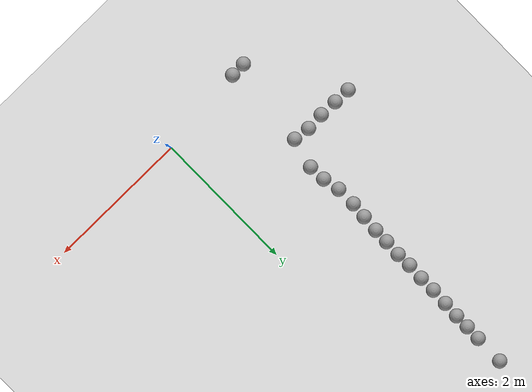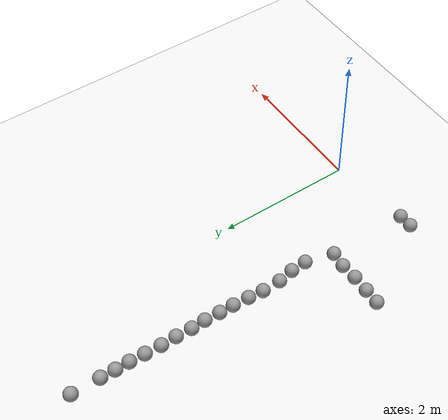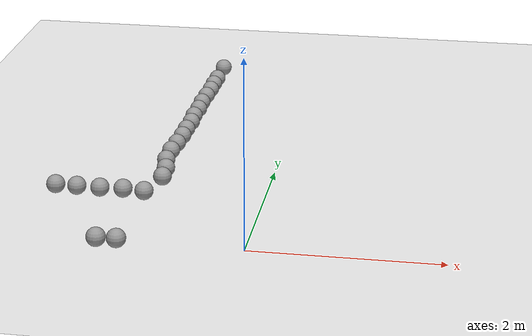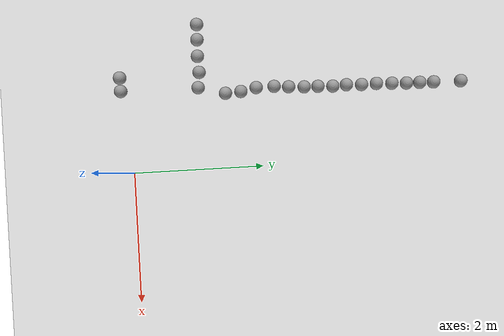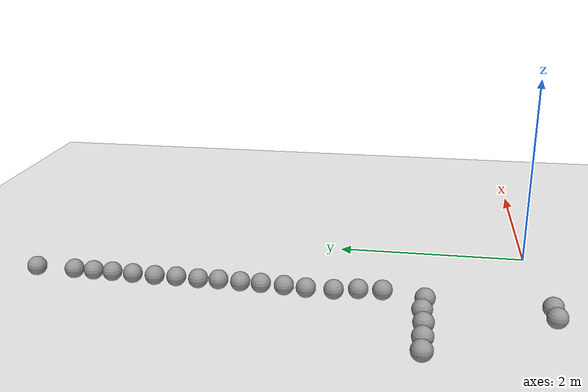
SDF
<sdf version="1.7">
 <world name="default">
  <model name="ground_plane">
   <static>1</static>
   <link name="link">
    <collision name="collision">
     <geometry><plane><normal>0 0 1</normal><size>100 100</size></plane></geometry>
     <surface>
      <contact><collide_bitmask>65535</collide_bitmask></contact>
      <friction><ode><mu>100</mu><mu2>50</mu2></ode></friction>
     </surface>
    </collision>
    <visual name="visual">
     <cast_shadows>0</cast_shadows>
     <geometry><plane><normal>0 0 1</normal><size>100 100</size></plane></geometry>
     <material>
      <script><uri>file://media/materials/scripts/gazebo.material</uri><name>Gazebo/White</name></script>
     </material>
    </visual>
   </link>
  </model>
  <model name="sphere_20">
   <link name="link_0">
    <inertial>
     <mass>1</mass>
     <inertia><ixx>0.1</ixx><ixy>0</ixy><ixz>0</ixz><iyy>0.1</iyy><iyz>0</iyz><izz>0.1</izz></inertia>
    </inertial>
    <visual name="visual">
     <geometry><sphere><radius>0.1</radius></sphere></geometry>
     <material>
      <lighting>1</lighting>
      <script><uri>file://media/materials/scripts/gazebo.material</uri><name>Gazebo/Grey</name></script>
      <shader type="pixel"><normal_map>__default__</normal_map></shader>
      <ambient>0.3 0.3 0.3 1</ambient>
      <diffuse>0.7 0.7 0.7 1</diffuse>
      <specular>0.01 0.01 0.01 1</specular>
      <emissive>0 0 0 1</emissive>
     </material>
    </visual>
    <collision name="collision">
     <geometry><sphere><radius>0.1</radius></sphere></geometry>
     <surface>
      <friction>
       <ode><mu>1</mu><mu2>1</mu2><fdir1>0 0 0</fdir1><slip1>0</slip1><slip2>0</slip2></ode>
       <torsional>
        <coefficient>1</coefficient>
        <patch_radius>0</patch_radius>
        <surface_radius>0</surface_radius>
        <use_patch_radius>1</use_patch_radius>
        <ode><slip>0</slip></ode>
       </torsional>
      </friction>
      <bounce><restitution_coefficient>0</restitution_coefficient><threshold>1e+06</threshold></bounce>
      <contact>
       <collide_without_contact>0</collide_without_contact>
       <collide_without_contact_bitmask>1</collide_without_contact_bitmask>
       <collide_bitmask>1</collide_bitmask>
       <ode>
        <soft_cfm>0</soft_cfm>
        <soft_erp>0.2</soft_erp>
        <kp>1e+13</kp>
        <kd>1</kd>
        <max_vel>0.01</max_vel>
        <min_depth>0</min_depth>
       </ode>
       <bullet>
        <split_impulse>1</split_impulse>
        <split_impulse_penetration_threshold>-0.01</split_impulse_penetration_threshold>
        <soft_cfm>0</soft_cfm>
        <soft_erp>0.2</soft_erp>
        <kp>1e+13</kp>
        <kd>1</kd>
       </bullet>
      </contact>
     </surface>
    </collision>
   </link>
   <static>0</static>
   <pose>-1.13523 5.09634 0.1 0.008725 -0.000692 1e-06</pose>
  </model>
  <model name="sphere_22">
   <link name="link_0">
    <inertial>
     <mass>1</mass>
     <inertia><ixx>0.1</ixx><ixy>0</ixy><ixz>0</ixz><iyy>0.1</iyy><iyz>0</iyz><izz>0.1</izz></inertia>
    </inertial>
    <visual name="visual">
     <geometry><sphere><radius>0.1</radius></sphere></geometry>
     <material>
      <lighting>1</lighting>
      <script><uri>file://media/materials/scripts/gazebo.material</uri><name>Gazebo/Grey</name></script>
      <shader type="pixel"><normal_map>__default__</normal_map></shader>
      <ambient>0.3 0.3 0.3 1</ambient>
      <diffuse>0.7 0.7 0.7 1</diffuse>
      <specular>0.01 0.01 0.01 1</specular>
      <emissive>0 0 0 1</emissive>
     </material>
    </visual>
    <collision name="collision">
     <geometry><sphere><radius>0.1</radius></sphere></geometry>
     <surface>
      <friction>
       <ode><mu>1</mu><mu2>1</mu2><fdir1>0 0 0</fdir1><slip1>0</slip1><slip2>0</slip2></ode>
       <torsional>
        <coefficient>1</coefficient>
        <patch_radius>0</patch_radius>
        <surface_radius>0</surface_radius>
        <use_patch_radius>1</use_patch_radius>
        <ode><slip>0</slip></ode>
       </torsional>
      </friction>
      <bounce><restitution_coefficient>0</restitution_coefficient><threshold>1e+06</threshold></bounce>
      <contact>
       <collide_without_contact>0</collide_without_contact>
       <collide_without_contact_bitmask>1</collide_without_contact_bitmask>
       <collide_bitmask>1</collide_bitmask>
       <ode>
        <soft_cfm>0</soft_cfm>
        <soft_erp>0.2</soft_erp>
        <kp>1e+13</kp>
        <kd>1</kd>
        <max_vel>0.01</max_vel>
        <min_depth>0</min_depth>
       </ode>
       <bullet>
        <split_impulse>1</split_impulse>
        <split_impulse_penetration_threshold>-0.01</split_impulse_penetration_threshold>
        <soft_cfm>0</soft_cfm>
        <soft_erp>0.2</soft_erp>
        <kp>1e+13</kp>
        <kd>1</kd>
       </bullet>
      </contact>
     </surface>
    </collision>
   </link>
   <static>0</static>
   <pose>-1.1404 4.68069 0.1 0.008813 -0.000441 3e-06</pose>
  </model>
  <model name="sphere_23">
   <link name="link_0">
    <inertial>
     <mass>1</mass>
     <inertia><ixx>0.1</ixx><ixy>0</ixy><ixz>0</ixz><iyy>0.1</iyy><iyz>0</iyz><izz>0.1</izz></inertia>
    </inertial>
    <visual name="visual">
     <geometry><sphere><radius>0.1</radius></sphere></geometry>
     <material>
      <lighting>1</lighting>
      <script><uri>file://media/materials/scripts/gazebo.material</uri><name>Gazebo/Grey</name></script>
      <shader type="pixel"><normal_map>__default__</normal_map></shader>
      <ambient>0.3 0.3 0.3 1</ambient>
      <diffuse>0.7 0.7 0.7 1</diffuse>
      <specular>0.01 0.01 0.01 1</specular>
      <emissive>0 0 0 1</emissive>
     </material>
    </visual>
    <collision name="collision">
     <geometry><sphere><radius>0.1</radius></sphere></geometry>
     <surface>
      <friction>
       <ode><mu>1</mu><mu2>1</mu2><fdir1>0 0 0</fdir1><slip1>0</slip1><slip2>0</slip2></ode>
       <torsional>
        <coefficient>1</coefficient>
        <patch_radius>0</patch_radius>
        <surface_radius>0</surface_radius>
        <use_patch_radius>1</use_patch_radius>
        <ode><slip>0</slip></ode>
       </torsional>
      </friction>
      <bounce><restitution_coefficient>0</restitution_coefficient><threshold>1e+06</threshold></bounce>
      <contact>
       <collide_without_contact>0</collide_without_contact>
       <collide_without_contact_bitmask>1</collide_without_contact_bitmask>
       <collide_bitmask>1</collide_bitmask>
       <ode>
        <soft_cfm>0</soft_cfm>
        <soft_erp>0.2</soft_erp>
        <kp>1e+13</kp>
        <kd>1</kd>
        <max_vel>0.01</max_vel>
        <min_depth>0</min_depth>
       </ode>
       <bullet>
        <split_impulse>1</split_impulse>
        <split_impulse_penetration_threshold>-0.01</split_impulse_penetration_threshold>
        <soft_cfm>0</soft_cfm>
        <soft_erp>0.2</soft_erp>
        <kp>1e+13</kp>
        <kd>1</kd>
       </bullet>
      </contact>
     </surface>
    </collision>
   </link>
   <static>0</static>
   <pose>-1.14558 4.46811 0.1 0 -0 0</pose>
  </model>
  <model name="sphere_24">
   <link name="link_0">
    <inertial>
     <mass>1</mass>
     <inertia><ixx>0.1</ixx><ixy>0</ixy><ixz>0</ixz><iyy>0.1</iyy><iyz>0</iyz><izz>0.1</izz></inertia>
    </inertial>
    <visual name="visual">
     <geometry><sphere><radius>0.1</radius></sphere></geometry>
     <material>
      <lighting>1</lighting>
      <script><uri>file://media/materials/scripts/gazebo.material</uri><name>Gazebo/Grey</name></script>
      <shader type="pixel"><normal_map>__default__</normal_map></shader>
      <ambient>0.3 0.3 0.3 1</ambient>
      <diffuse>0.7 0.7 0.7 1</diffuse>
      <specular>0.01 0.01 0.01 1</specular>
      <emissive>0 0 0 1</emissive>
     </material>
    </visual>
    <collision name="collision">
     <geometry><sphere><radius>0.1</radius></sphere></geometry>
     <surface>
      <friction>
       <ode><mu>1</mu><mu2>1</mu2><fdir1>0 0 0</fdir1><slip1>0</slip1><slip2>0</slip2></ode>
       <torsional>
        <coefficient>1</coefficient>
        <patch_radius>0</patch_radius>
        <surface_radius>0</surface_radius>
        <use_patch_radius>1</use_patch_radius>
        <ode><slip>0</slip></ode>
       </torsional>
      </friction>
      <bounce><restitution_coefficient>0</restitution_coefficient><threshold>1e+06</threshold></bounce>
      <contact>
       <collide_without_contact>0</collide_without_contact>
       <collide_without_contact_bitmask>1</collide_without_contact_bitmask>
       <collide_bitmask>1</collide_bitmask>
       <ode>
        <soft_cfm>0</soft_cfm>
        <soft_erp>0.2</soft_erp>
        <kp>1e+13</kp>
        <kd>1</kd>
        <max_vel>0.01</max_vel>
        <min_depth>0</min_depth>
       </ode>
       <bullet>
        <split_impulse>1</split_impulse>
        <split_impulse_penetration_threshold>-0.01</split_impulse_penetration_threshold>
        <soft_cfm>0</soft_cfm>
        <soft_erp>0.2</soft_erp>
        <kp>1e+13</kp>
        <kd>1</kd>
       </bullet>
      </contact>
     </surface>
    </collision>
   </link>
   <static>0</static>
   <pose>-1.14606 4.26398 0.1 0 -0 0</pose>
  </model>
  <model name="sphere_25">
   <link name="link_0">
    <inertial>
     <mass>1</mass>
     <inertia><ixx>0.1</ixx><ixy>0</ixy><ixz>0</ixz><iyy>0.1</iyy><iyz>0</iyz><izz>0.1</izz></inertia>
    </inertial>
    <visual name="visual">
     <geometry><sphere><radius>0.1</radius></sphere></geometry>
     <material>
      <lighting>1</lighting>
      <script><uri>file://media/materials/scripts/gazebo.material</uri><name>Gazebo/Grey</name></script>
      <shader type="pixel"><normal_map>__default__</normal_map></shader>
      <ambient>0.3 0.3 0.3 1</ambient>
      <diffuse>0.7 0.7 0.7 1</diffuse>
      <specular>0.01 0.01 0.01 1</specular>
      <emissive>0 0 0 1</emissive>
     </material>
    </visual>
    <collision name="collision">
     <geometry><sphere><radius>0.1</radius></sphere></geometry>
     <surface>
      <friction>
       <ode><mu>1</mu><mu2>1</mu2><fdir1>0 0 0</fdir1><slip1>0</slip1><slip2>0</slip2></ode>
       <torsional>
        <coefficient>1</coefficient>
        <patch_radius>0</patch_radius>
        <surface_radius>0</surface_radius>
        <use_patch_radius>1</use_patch_radius>
        <ode><slip>0</slip></ode>
       </torsional>
      </friction>
      <bounce><restitution_coefficient>0</restitution_coefficient><threshold>1e+06</threshold></bounce>
      <contact>
       <collide_without_contact>0</collide_without_contact>
       <collide_without_contact_bitmask>1</collide_without_contact_bitmask>
       <collide_bitmask>1</collide_bitmask>
       <ode>
        <soft_cfm>0</soft_cfm>
        <soft_erp>0.2</soft_erp>
        <kp>1e+13</kp>
        <kd>1</kd>
        <max_vel>0.01</max_vel>
        <min_depth>0</min_depth>
       </ode>
       <bullet>
        <split_impulse>1</split_impulse>
        <split_impulse_penetration_threshold>-0.01</split_impulse_penetration_threshold>
        <soft_cfm>0</soft_cfm>
        <soft_erp>0.2</soft_erp>
        <kp>1e+13</kp>
        <kd>1</kd>
       </bullet>
      </contact>
     </surface>
    </collision>
   </link>
   <static>0</static>
   <pose>-1.15608 4.04089 0.1 0 -0 0</pose>
  </model>
  <model name="sphere_26">
   <link name="link_0">
    <inertial>
     <mass>1</mass>
     <inertia><ixx>0.1</ixx><ixy>0</ixy><ixz>0</ixz><iyy>0.1</iyy><iyz>0</iyz><izz>0.1</izz></inertia>
    </inertial>
    <visual name="visual">
     <geometry><sphere><radius>0.1</radius></sphere></geometry>
     <material>
      <lighting>1</lighting>
      <script><uri>file://media/materials/scripts/gazebo.material</uri><name>Gazebo/Grey</name></script>
      <shader type="pixel"><normal_map>__default__</normal_map></shader>
      <ambient>0.3 0.3 0.3 1</ambient>
      <diffuse>0.7 0.7 0.7 1</diffuse>
      <specular>0.01 0.01 0.01 1</specular>
      <emissive>0 0 0 1</emissive>
     </material>
    </visual>
    <collision name="collision">
     <geometry><sphere><radius>0.1</radius></sphere></geometry>
     <surface>
      <friction>
       <ode><mu>1</mu><mu2>1</mu2><fdir1>0 0 0</fdir1><slip1>0</slip1><slip2>0</slip2></ode>
       <torsional>
        <coefficient>1</coefficient>
        <patch_radius>0</patch_radius>
        <surface_radius>0</surface_radius>
        <use_patch_radius>1</use_patch_radius>
        <ode><slip>0</slip></ode>
       </torsional>
      </friction>
      <bounce><restitution_coefficient>0</restitution_coefficient><threshold>1e+06</threshold></bounce>
      <contact>
       <collide_without_contact>0</collide_without_contact>
       <collide_without_contact_bitmask>1</collide_without_contact_bitmask>
       <collide_bitmask>1</collide_bitmask>
       <ode>
        <soft_cfm>0</soft_cfm>
        <soft_erp>0.2</soft_erp>
        <kp>1e+13</kp>
        <kd>1</kd>
        <max_vel>0.01</max_vel>
        <min_depth>0</min_depth>
       </ode>
       <bullet>
        <split_impulse>1</split_impulse>
        <split_impulse_penetration_threshold>-0.01</split_impulse_penetration_threshold>
        <soft_cfm>0</soft_cfm>
        <soft_erp>0.2</soft_erp>
        <kp>1e+13</kp>
        <kd>1</kd>
       </bullet>
      </contact>
     </surface>
    </collision>
   </link>
   <static>0</static>
   <pose>-1.16613 3.80358 0.1 0 -0 0</pose>
  </model>
  <model name="sphere_27">
   <link name="link_0">
    <inertial>
     <mass>1</mass>
     <inertia><ixx>0.1</ixx><ixy>0</ixy><ixz>0</ixz><iyy>0.1</iyy><iyz>0</iyz><izz>0.1</izz></inertia>
    </inertial>
    <visual name="visual">
     <geometry><sphere><radius>0.1</radius></sphere></geometry>
     <material>
      <lighting>1</lighting>
      <script><uri>file://media/materials/scripts/gazebo.material</uri><name>Gazebo/Grey</name></script>
      <shader type="pixel"><normal_map>__default__</normal_map></shader>
      <ambient>0.3 0.3 0.3 1</ambient>
      <diffuse>0.7 0.7 0.7 1</diffuse>
      <specular>0.01 0.01 0.01 1</specular>
      <emissive>0 0 0 1</emissive>
     </material>
    </visual>
    <collision name="collision">
     <geometry><sphere><radius>0.1</radius></sphere></geometry>
     <surface>
      <friction>
       <ode><mu>1</mu><mu2>1</mu2><fdir1>0 0 0</fdir1><slip1>0</slip1><slip2>0</slip2></ode>
       <torsional>
        <coefficient>1</coefficient>
        <patch_radius>0</patch_radius>
        <surface_radius>0</surface_radius>
        <use_patch_radius>1</use_patch_radius>
        <ode><slip>0</slip></ode>
       </torsional>
      </friction>
      <bounce><restitution_coefficient>0</restitution_coefficient><threshold>1e+06</threshold></bounce>
      <contact>
       <collide_without_contact>0</collide_without_contact>
       <collide_without_contact_bitmask>1</collide_without_contact_bitmask>
       <collide_bitmask>1</collide_bitmask>
       <ode>
        <soft_cfm>0</soft_cfm>
        <soft_erp>0.2</soft_erp>
        <kp>1e+13</kp>
        <kd>1</kd>
        <max_vel>0.01</max_vel>
        <min_depth>0</min_depth>
       </ode>
       <bullet>
        <split_impulse>1</split_impulse>
        <split_impulse_penetration_threshold>-0.01</split_impulse_penetration_threshold>
        <soft_cfm>0</soft_cfm>
        <soft_erp>0.2</soft_erp>
        <kp>1e+13</kp>
        <kd>1</kd>
       </bullet>
      </contact>
     </surface>
    </collision>
   </link>
   <static>0</static>
   <pose>-1.16192 3.57573 0.1 0 -0 0</pose>
  </model>
  <model name="sphere_28">
   <link name="link_0">
    <inertial>
     <mass>1</mass>
     <inertia><ixx>0.1</ixx><ixy>0</ixy><ixz>0</ixz><iyy>0.1</iyy><iyz>0</iyz><izz>0.1</izz></inertia>
    </inertial>
    <visual name="visual">
     <geometry><sphere><radius>0.1</radius></sphere></geometry>
     <material>
      <lighting>1</lighting>
      <script><uri>file://media/materials/scripts/gazebo.material</uri><name>Gazebo/Grey</name></script>
      <shader type="pixel"><normal_map>__default__</normal_map></shader>
      <ambient>0.3 0.3 0.3 1</ambient>
      <diffuse>0.7 0.7 0.7 1</diffuse>
      <specular>0.01 0.01 0.01 1</specular>
      <emissive>0 0 0 1</emissive>
     </material>
    </visual>
    <collision name="collision">
     <geometry><sphere><radius>0.1</radius></sphere></geometry>
     <surface>
      <friction>
       <ode><mu>1</mu><mu2>1</mu2><fdir1>0 0 0</fdir1><slip1>0</slip1><slip2>0</slip2></ode>
       <torsional>
        <coefficient>1</coefficient>
        <patch_radius>0</patch_radius>
        <surface_radius>0</surface_radius>
        <use_patch_radius>1</use_patch_radius>
        <ode><slip>0</slip></ode>
       </torsional>
      </friction>
      <bounce><restitution_coefficient>0</restitution_coefficient><threshold>1e+06</threshold></bounce>
      <contact>
       <collide_without_contact>0</collide_without_contact>
       <collide_without_contact_bitmask>1</collide_without_contact_bitmask>
       <collide_bitmask>1</collide_bitmask>
       <ode>
        <soft_cfm>0</soft_cfm>
        <soft_erp>0.2</soft_erp>
        <kp>1e+13</kp>
        <kd>1</kd>
        <max_vel>0.01</max_vel>
        <min_depth>0</min_depth>
       </ode>
       <bullet>
        <split_impulse>1</split_impulse>
        <split_impulse_penetration_threshold>-0.01</split_impulse_penetration_threshold>
        <soft_cfm>0</soft_cfm>
        <soft_erp>0.2</soft_erp>
        <kp>1e+13</kp>
        <kd>1</kd>
       </bullet>
      </contact>
     </surface>
    </collision>
   </link>
   <static>0</static>
   <pose>-1.17196 3.34319 0.1 0 -0 0</pose>
  </model>
  <model name="sphere_29">
   <link name="link_0">
    <inertial>
     <mass>1</mass>
     <inertia><ixx>0.1</ixx><ixy>0</ixy><ixz>0</ixz><iyy>0.1</iyy><iyz>0</iyz><izz>0.1</izz></inertia>
    </inertial>
    <visual name="visual">
     <geometry><sphere><radius>0.1</radius></sphere></geometry>
     <material>
      <lighting>1</lighting>
      <script><uri>file://media/materials/scripts/gazebo.material</uri><name>Gazebo/Grey</name></script>
      <shader type="pixel"><normal_map>__default__</normal_map></shader>
      <ambient>0.3 0.3 0.3 1</ambient>
      <diffuse>0.7 0.7 0.7 1</diffuse>
      <specular>0.01 0.01 0.01 1</specular>
      <emissive>0 0 0 1</emissive>
     </material>
    </visual>
    <collision name="collision">
     <geometry><sphere><radius>0.1</radius></sphere></geometry>
     <surface>
      <friction>
       <ode><mu>1</mu><mu2>1</mu2><fdir1>0 0 0</fdir1><slip1>0</slip1><slip2>0</slip2></ode>
       <torsional>
        <coefficient>1</coefficient>
        <patch_radius>0</patch_radius>
        <surface_radius>0</surface_radius>
        <use_patch_radius>1</use_patch_radius>
        <ode><slip>0</slip></ode>
       </torsional>
      </friction>
      <bounce><restitution_coefficient>0</restitution_coefficient><threshold>1e+06</threshold></bounce>
      <contact>
       <collide_without_contact>0</collide_without_contact>
       <collide_without_contact_bitmask>1</collide_without_contact_bitmask>
       <collide_bitmask>1</collide_bitmask>
       <ode>
        <soft_cfm>0</soft_cfm>
        <soft_erp>0.2</soft_erp>
        <kp>1e+13</kp>
        <kd>1</kd>
        <max_vel>0.01</max_vel>
        <min_depth>0</min_depth>
       </ode>
       <bullet>
        <split_impulse>1</split_impulse>
        <split_impulse_penetration_threshold>-0.01</split_impulse_penetration_threshold>
        <soft_cfm>0</soft_cfm>
        <soft_erp>0.2</soft_erp>
        <kp>1e+13</kp>
        <kd>1</kd>
       </bullet>
      </contact>
     </surface>
    </collision>
   </link>
   <static>0</static>
   <pose>-1.16297 3.13435 0.1 0 -0 0</pose>
  </model>
  <model name="sphere_30">
   <link name="link_0">
    <inertial>
     <mass>1</mass>
     <inertia><ixx>0.1</ixx><ixy>0</ixy><ixz>0</ixz><iyy>0.1</iyy><iyz>0</iyz><izz>0.1</izz></inertia>
    </inertial>
    <visual name="visual">
     <geometry><sphere><radius>0.1</radius></sphere></geometry>
     <material>
      <lighting>1</lighting>
      <script><uri>file://media/materials/scripts/gazebo.material</uri><name>Gazebo/Grey</name></script>
      <shader type="pixel"><normal_map>__default__</normal_map></shader>
      <ambient>0.3 0.3 0.3 1</ambient>
      <diffuse>0.7 0.7 0.7 1</diffuse>
      <specular>0.01 0.01 0.01 1</specular>
      <emissive>0 0 0 1</emissive>
     </material>
    </visual>
    <collision name="collision">
     <geometry><sphere><radius>0.1</radius></sphere></geometry>
     <surface>
      <friction>
       <ode><mu>1</mu><mu2>1</mu2><fdir1>0 0 0</fdir1><slip1>0</slip1><slip2>0</slip2></ode>
       <torsional>
        <coefficient>1</coefficient>
        <patch_radius>0</patch_radius>
        <surface_radius>0</surface_radius>
        <use_patch_radius>1</use_patch_radius>
        <ode><slip>0</slip></ode>
       </torsional>
      </friction>
      <bounce><restitution_coefficient>0</restitution_coefficient><threshold>1e+06</threshold></bounce>
      <contact>
       <collide_without_contact>0</collide_without_contact>
       <collide_without_contact_bitmask>1</collide_without_contact_bitmask>
       <collide_bitmask>1</collide_bitmask>
       <ode>
        <soft_cfm>0</soft_cfm>
        <soft_erp>0.2</soft_erp>
        <kp>1e+13</kp>
        <kd>1</kd>
        <max_vel>0.01</max_vel>
        <min_depth>0</min_depth>
       </ode>
       <bullet>
        <split_impulse>1</split_impulse>
        <split_impulse_penetration_threshold>-0.01</split_impulse_penetration_threshold>
        <soft_cfm>0</soft_cfm>
        <soft_erp>0.2</soft_erp>
        <kp>1e+13</kp>
        <kd>1</kd>
       </bullet>
      </contact>
     </surface>
    </collision>
   </link>
   <static>0</static>
   <pose>-1.17298 2.90659 0.1 0 -0 0</pose>
  </model>
  <model name="sphere_31">
   <link name="link_0">
    <inertial>
     <mass>1</mass>
     <inertia><ixx>0.1</ixx><ixy>0</ixy><ixz>0</ixz><iyy>0.1</iyy><iyz>0</iyz><izz>0.1</izz></inertia>
    </inertial>
    <visual name="visual">
     <geometry><sphere><radius>0.1</radius></sphere></geometry>
     <material>
      <lighting>1</lighting>
      <script><uri>file://media/materials/scripts/gazebo.material</uri><name>Gazebo/Grey</name></script>
      <shader type="pixel"><normal_map>__default__</normal_map></shader>
      <ambient>0.3 0.3 0.3 1</ambient>
      <diffuse>0.7 0.7 0.7 1</diffuse>
      <specular>0.01 0.01 0.01 1</specular>
      <emissive>0 0 0 1</emissive>
     </material>
    </visual>
    <collision name="collision">
     <geometry><sphere><radius>0.1</radius></sphere></geometry>
     <surface>
      <friction>
       <ode><mu>1</mu><mu2>1</mu2><fdir1>0 0 0</fdir1><slip1>0</slip1><slip2>0</slip2></ode>
       <torsional>
        <coefficient>1</coefficient>
        <patch_radius>0</patch_radius>
        <surface_radius>0</surface_radius>
        <use_patch_radius>1</use_patch_radius>
        <ode><slip>0</slip></ode>
       </torsional>
      </friction>
      <bounce><restitution_coefficient>0</restitution_coefficient><threshold>1e+06</threshold></bounce>
      <contact>
       <collide_without_contact>0</collide_without_contact>
       <collide_without_contact_bitmask>1</collide_without_contact_bitmask>
       <collide_bitmask>1</collide_bitmask>
       <ode>
        <soft_cfm>0</soft_cfm>
        <soft_erp>0.2</soft_erp>
        <kp>1e+13</kp>
        <kd>1</kd>
        <max_vel>0.01</max_vel>
        <min_depth>0</min_depth>
       </ode>
       <bullet>
        <split_impulse>1</split_impulse>
        <split_impulse_penetration_threshold>-0.01</split_impulse_penetration_threshold>
        <soft_cfm>0</soft_cfm>
        <soft_erp>0.2</soft_erp>
        <kp>1e+13</kp>
        <kd>1</kd>
       </bullet>
      </contact>
     </surface>
    </collision>
   </link>
   <static>0</static>
   <pose>-1.17631 2.69518 0.1 0 -0 0</pose>
  </model>
  <model name="sphere_32">
   <link name="link_0">
    <inertial>
     <mass>1</mass>
     <inertia><ixx>0.1</ixx><ixy>0</ixy><ixz>0</ixz><iyy>0.1</iyy><iyz>0</iyz><izz>0.1</izz></inertia>
    </inertial>
    <visual name="visual">
     <geometry><sphere><radius>0.1</radius></sphere></geometry>
     <material>
      <lighting>1</lighting>
      <script><uri>file://media/materials/scripts/gazebo.material</uri><name>Gazebo/Grey</name></script>
      <shader type="pixel"><normal_map>__default__</normal_map></shader>
      <ambient>0.3 0.3 0.3 1</ambient>
      <diffuse>0.7 0.7 0.7 1</diffuse>
      <specular>0.01 0.01 0.01 1</specular>
      <emissive>0 0 0 1</emissive>
     </material>
    </visual>
    <collision name="collision">
     <geometry><sphere><radius>0.1</radius></sphere></geometry>
     <surface>
      <friction>
       <ode><mu>1</mu><mu2>1</mu2><fdir1>0 0 0</fdir1><slip1>0</slip1><slip2>0</slip2></ode>
       <torsional>
        <coefficient>1</coefficient>
        <patch_radius>0</patch_radius>
        <surface_radius>0</surface_radius>
        <use_patch_radius>1</use_patch_radius>
        <ode><slip>0</slip></ode>
       </torsional>
      </friction>
      <bounce><restitution_coefficient>0</restitution_coefficient><threshold>1e+06</threshold></bounce>
      <contact>
       <collide_without_contact>0</collide_without_contact>
       <collide_without_contact_bitmask>1</collide_without_contact_bitmask>
       <collide_bitmask>1</collide_bitmask>
       <ode>
        <soft_cfm>0</soft_cfm>
        <soft_erp>0.2</soft_erp>
        <kp>1e+13</kp>
        <kd>1</kd>
        <max_vel>0.01</max_vel>
        <min_depth>0</min_depth>
       </ode>
       <bullet>
        <split_impulse>1</split_impulse>
        <split_impulse_penetration_threshold>-0.01</split_impulse_penetration_threshold>
        <soft_cfm>0</soft_cfm>
        <soft_erp>0.2</soft_erp>
        <kp>1e+13</kp>
        <kd>1</kd>
       </bullet>
      </contact>
     </surface>
    </collision>
   </link>
   <static>0</static>
   <pose>-1.19111 2.45793 0.1 0 -0 0</pose>
  </model>
  <model name="sphere_33">
   <link name="link_0">
    <inertial>
     <mass>1</mass>
     <inertia><ixx>0.1</ixx><ixy>0</ixy><ixz>0</ixz><iyy>0.1</iyy><iyz>0</iyz><izz>0.1</izz></inertia>
    </inertial>
    <visual name="visual">
     <geometry><sphere><radius>0.1</radius></sphere></geometry>
     <material>
      <lighting>1</lighting>
      <script><uri>file://media/materials/scripts/gazebo.material</uri><name>Gazebo/Grey</name></script>
      <shader type="pixel"><normal_map>__default__</normal_map></shader>
      <ambient>0.3 0.3 0.3 1</ambient>
      <diffuse>0.7 0.7 0.7 1</diffuse>
      <specular>0.01 0.01 0.01 1</specular>
      <emissive>0 0 0 1</emissive>
     </material>
    </visual>
    <collision name="collision">
     <geometry><sphere><radius>0.1</radius></sphere></geometry>
     <surface>
      <friction>
       <ode><mu>1</mu><mu2>1</mu2><fdir1>0 0 0</fdir1><slip1>0</slip1><slip2>0</slip2></ode>
       <torsional>
        <coefficient>1</coefficient>
        <patch_radius>0</patch_radius>
        <surface_radius>0</surface_radius>
        <use_patch_radius>1</use_patch_radius>
        <ode><slip>0</slip></ode>
       </torsional>
      </friction>
      <bounce><restitution_coefficient>0</restitution_coefficient><threshold>1e+06</threshold></bounce>
      <contact>
       <collide_without_contact>0</collide_without_contact>
       <collide_without_contact_bitmask>1</collide_without_contact_bitmask>
       <collide_bitmask>1</collide_bitmask>
       <ode>
        <soft_cfm>0</soft_cfm>
        <soft_erp>0.2</soft_erp>
        <kp>1e+13</kp>
        <kd>1</kd>
        <max_vel>0.01</max_vel>
        <min_depth>0</min_depth>
       </ode>
       <bullet>
        <split_impulse>1</split_impulse>
        <split_impulse_penetration_threshold>-0.01</split_impulse_penetration_threshold>
        <soft_cfm>0</soft_cfm>
        <soft_erp>0.2</soft_erp>
        <kp>1e+13</kp>
        <kd>1</kd>
       </bullet>
      </contact>
     </surface>
    </collision>
   </link>
   <static>0</static>
   <pose>-1.21062 2.23494 0.1 0 -0 0</pose>
  </model>
  <model name="sphere_34">
   <link name="link_0">
    <inertial>
     <mass>1</mass>
     <inertia><ixx>0.1</ixx><ixy>0</ixy><ixz>0</ixz><iyy>0.1</iyy><iyz>0</iyz><izz>0.1</izz></inertia>
    </inertial>
    <visual name="visual">
     <geometry><sphere><radius>0.1</radius></sphere></geometry>
     <material>
      <lighting>1</lighting>
      <script><uri>file://media/materials/scripts/gazebo.material</uri><name>Gazebo/Grey</name></script>
      <shader type="pixel"><normal_map>__default__</normal_map></shader>
      <ambient>0.3 0.3 0.3 1</ambient>
      <diffuse>0.7 0.7 0.7 1</diffuse>
      <specular>0.01 0.01 0.01 1</specular>
      <emissive>0 0 0 1</emissive>
     </material>
    </visual>
    <collision name="collision">
     <geometry><sphere><radius>0.1</radius></sphere></geometry>
     <surface>
      <friction>
       <ode><mu>1</mu><mu2>1</mu2><fdir1>0 0 0</fdir1><slip1>0</slip1><slip2>0</slip2></ode>
       <torsional>
        <coefficient>1</coefficient>
        <patch_radius>0</patch_radius>
        <surface_radius>0</surface_radius>
        <use_patch_radius>1</use_patch_radius>
        <ode><slip>0</slip></ode>
       </torsional>
      </friction>
      <bounce><restitution_coefficient>0</restitution_coefficient><threshold>1e+06</threshold></bounce>
      <contact>
       <collide_without_contact>0</collide_without_contact>
       <collide_without_contact_bitmask>1</collide_without_contact_bitmask>
       <collide_bitmask>1</collide_bitmask>
       <ode>
        <soft_cfm>0</soft_cfm>
        <soft_erp>0.2</soft_erp>
        <kp>1e+13</kp>
        <kd>1</kd>
        <max_vel>0.01</max_vel>
        <min_depth>0</min_depth>
       </ode>
       <bullet>
        <split_impulse>1</split_impulse>
        <split_impulse_penetration_threshold>-0.01</split_impulse_penetration_threshold>
        <soft_cfm>0</soft_cfm>
        <soft_erp>0.2</soft_erp>
        <kp>1e+13</kp>
        <kd>1</kd>
       </bullet>
      </contact>
     </surface>
    </collision>
   </link>
   <static>0</static>
   <pose>-1.20653 1.95972 0.1 0 -0 0</pose>
  </model>
  <model name="sphere_35">
   <link name="link_0">
    <inertial>
     <mass>1</mass>
     <inertia><ixx>0.1</ixx><ixy>0</ixy><ixz>0</ixz><iyy>0.1</iyy><iyz>0</iyz><izz>0.1</izz></inertia>
    </inertial>
    <visual name="visual">
     <geometry><sphere><radius>0.1</radius></sphere></geometry>
     <material>
      <lighting>1</lighting>
      <script><uri>file://media/materials/scripts/gazebo.material</uri><name>Gazebo/Grey</name></script>
      <shader type="pixel"><normal_map>__default__</normal_map></shader>
      <ambient>0.3 0.3 0.3 1</ambient>
      <diffuse>0.7 0.7 0.7 1</diffuse>
      <specular>0.01 0.01 0.01 1</specular>
      <emissive>0 0 0 1</emissive>
     </material>
    </visual>
    <collision name="collision">
     <geometry><sphere><radius>0.1</radius></sphere></geometry>
     <surface>
      <friction>
       <ode><mu>1</mu><mu2>1</mu2><fdir1>0 0 0</fdir1><slip1>0</slip1><slip2>0</slip2></ode>
       <torsional>
        <coefficient>1</coefficient>
        <patch_radius>0</patch_radius>
        <surface_radius>0</surface_radius>
        <use_patch_radius>1</use_patch_radius>
        <ode><slip>0</slip></ode>
       </torsional>
      </friction>
      <bounce><restitution_coefficient>0</restitution_coefficient><threshold>1e+06</threshold></bounce>
      <contact>
       <collide_without_contact>0</collide_without_contact>
       <collide_without_contact_bitmask>1</collide_without_contact_bitmask>
       <collide_bitmask>1</collide_bitmask>
       <ode>
        <soft_cfm>0</soft_cfm>
        <soft_erp>0.2</soft_erp>
        <kp>1e+13</kp>
        <kd>1</kd>
        <max_vel>0.01</max_vel>
        <min_depth>0</min_depth>
       </ode>
       <bullet>
        <split_impulse>1</split_impulse>
        <split_impulse_penetration_threshold>-0.01</split_impulse_penetration_threshold>
        <soft_cfm>0</soft_cfm>
        <soft_erp>0.2</soft_erp>
        <kp>1e+13</kp>
        <kd>1</kd>
       </bullet>
      </contact>
     </surface>
    </collision>
   </link>
   <static>0</static>
   <pose>-1.15963 1.72234 0.1 0 -0 0</pose>
  </model>
  <model name="sphere_36">
   <link name="link_0">
    <inertial>
     <mass>1</mass>
     <inertia><ixx>0.1</ixx><ixy>0</ixy><ixz>0</ixz><iyy>0.1</iyy><iyz>0</iyz><izz>0.1</izz></inertia>
    </inertial>
    <visual name="visual">
     <geometry><sphere><radius>0.1</radius></sphere></geometry>
     <material>
      <lighting>1</lighting>
      <script><uri>file://media/materials/scripts/gazebo.material</uri><name>Gazebo/Grey</name></script>
      <shader type="pixel"><normal_map>__default__</normal_map></shader>
      <ambient>0.3 0.3 0.3 1</ambient>
      <diffuse>0.7 0.7 0.7 1</diffuse>
      <specular>0.01 0.01 0.01 1</specular>
      <emissive>0 0 0 1</emissive>
     </material>
    </visual>
    <collision name="collision">
     <geometry><sphere><radius>0.1</radius></sphere></geometry>
     <surface>
      <friction>
       <ode><mu>1</mu><mu2>1</mu2><fdir1>0 0 0</fdir1><slip1>0</slip1><slip2>0</slip2></ode>
       <torsional>
        <coefficient>1</coefficient>
        <patch_radius>0</patch_radius>
        <surface_radius>0</surface_radius>
        <use_patch_radius>1</use_patch_radius>
        <ode><slip>0</slip></ode>
       </torsional>
      </friction>
      <bounce><restitution_coefficient>0</restitution_coefficient><threshold>1e+06</threshold></bounce>
      <contact>
       <collide_without_contact>0</collide_without_contact>
       <collide_without_contact_bitmask>1</collide_without_contact_bitmask>
       <collide_bitmask>1</collide_bitmask>
       <ode>
        <soft_cfm>0</soft_cfm>
        <soft_erp>0.2</soft_erp>
        <kp>1e+13</kp>
        <kd>1</kd>
        <max_vel>0.01</max_vel>
        <min_depth>0</min_depth>
       </ode>
       <bullet>
        <split_impulse>1</split_impulse>
        <split_impulse_penetration_threshold>-0.01</split_impulse_penetration_threshold>
        <soft_cfm>0</soft_cfm>
        <soft_erp>0.2</soft_erp>
        <kp>1e+13</kp>
        <kd>1</kd>
       </bullet>
      </contact>
     </surface>
    </collision>
   </link>
   <static>0</static>
   <pose>-1.14596 1.48507 0.1 0 -0 0</pose>
  </model>
  <model name="sphere_38">
   <link name="link_0">
    <inertial>
     <mass>1</mass>
     <inertia><ixx>0.1</ixx><ixy>0</ixy><ixz>0</ixz><iyy>0.1</iyy><iyz>0</iyz><izz>0.1</izz></inertia>
    </inertial>
    <visual name="visual">
     <geometry><sphere><radius>0.1</radius></sphere></geometry>
     <material>
      <lighting>1</lighting>
      <script><uri>file://media/materials/scripts/gazebo.material</uri><name>Gazebo/Grey</name></script>
      <shader type="pixel"><normal_map>__default__</normal_map></shader>
      <ambient>0.3 0.3 0.3 1</ambient>
      <diffuse>0.7 0.7 0.7 1</diffuse>
      <specular>0.01 0.01 0.01 1</specular>
      <emissive>0 0 0 1</emissive>
     </material>
    </visual>
    <collision name="collision">
     <geometry><sphere><radius>0.1</radius></sphere></geometry>
     <surface>
      <friction>
       <ode><mu>1</mu><mu2>1</mu2><fdir1>0 0 0</fdir1><slip1>0</slip1><slip2>0</slip2></ode>
       <torsional>
        <coefficient>1</coefficient>
        <patch_radius>0</patch_radius>
        <surface_radius>0</surface_radius>
        <use_patch_radius>1</use_patch_radius>
        <ode><slip>0</slip></ode>
       </torsional>
      </friction>
      <bounce><restitution_coefficient>0</restitution_coefficient><threshold>1e+06</threshold></bounce>
      <contact>
       <collide_without_contact>0</collide_without_contact>
       <collide_without_contact_bitmask>1</collide_without_contact_bitmask>
       <collide_bitmask>1</collide_bitmask>
       <ode>
        <soft_cfm>0</soft_cfm>
        <soft_erp>0.2</soft_erp>
        <kp>1e+13</kp>
        <kd>1</kd>
        <max_vel>0.01</max_vel>
        <min_depth>0</min_depth>
       </ode>
       <bullet>
        <split_impulse>1</split_impulse>
        <split_impulse_penetration_threshold>-0.01</split_impulse_penetration_threshold>
        <soft_cfm>0</soft_cfm>
        <soft_erp>0.2</soft_erp>
        <kp>1e+13</kp>
        <kd>1</kd>
       </bullet>
      </contact>
     </surface>
    </collision>
   </link>
   <static>0</static>
   <pose>-1.25433 1.07158 0.1 0 -0 0</pose>
  </model>
  <model name="sphere_39">
   <link name="link_0">
    <inertial>
     <mass>1</mass>
     <inertia><ixx>0.1</ixx><ixy>0</ixy><ixz>0</ixz><iyy>0.1</iyy><iyz>0</iyz><izz>0.1</izz></inertia>
    </inertial>
    <visual name="visual">
     <geometry><sphere><radius>0.1</radius></sphere></geometry>
     <material>
      <lighting>1</lighting>
      <script><uri>file://media/materials/scripts/gazebo.material</uri><name>Gazebo/Grey</name></script>
      <shader type="pixel"><normal_map>__default__</normal_map></shader>
      <ambient>0.3 0.3 0.3 1</ambient>
      <diffuse>0.7 0.7 0.7 1</diffuse>
      <specular>0.01 0.01 0.01 1</specular>
      <emissive>0 0 0 1</emissive>
     </material>
    </visual>
    <collision name="collision">
     <geometry><sphere><radius>0.1</radius></sphere></geometry>
     <surface>
      <friction>
       <ode><mu>1</mu><mu2>1</mu2><fdir1>0 0 0</fdir1><slip1>0</slip1><slip2>0</slip2></ode>
       <torsional>
        <coefficient>1</coefficient>
        <patch_radius>0</patch_radius>
        <surface_radius>0</surface_radius>
        <use_patch_radius>1</use_patch_radius>
        <ode><slip>0</slip></ode>
       </torsional>
      </friction>
      <bounce><restitution_coefficient>0</restitution_coefficient><threshold>1e+06</threshold></bounce>
      <contact>
       <collide_without_contact>0</collide_without_contact>
       <collide_without_contact_bitmask>1</collide_without_contact_bitmask>
       <collide_bitmask>1</collide_bitmask>
       <ode>
        <soft_cfm>0</soft_cfm>
        <soft_erp>0.2</soft_erp>
        <kp>1e+13</kp>
        <kd>1</kd>
        <max_vel>0.01</max_vel>
        <min_depth>0</min_depth>
       </ode>
       <bullet>
        <split_impulse>1</split_impulse>
        <split_impulse_penetration_threshold>-0.01</split_impulse_penetration_threshold>
        <soft_cfm>0</soft_cfm>
        <soft_erp>0.2</soft_erp>
        <kp>1e+13</kp>
        <kd>1</kd>
       </bullet>
      </contact>
     </surface>
    </collision>
   </link>
   <static>0</static>
   <pose>-1.48799 1.09919 0.1 0 -0 0</pose>
  </model>
  <model name="sphere_40">
   <link name="link_0">
    <inertial>
     <mass>1</mass>
     <inertia><ixx>0.1</ixx><ixy>0</ixy><ixz>0</ixz><iyy>0.1</iyy><iyz>0</iyz><izz>0.1</izz></inertia>
    </inertial>
    <visual name="visual">
     <geometry><sphere><radius>0.1</radius></sphere></geometry>
     <material>
      <lighting>1</lighting>
      <script><uri>file://media/materials/scripts/gazebo.material</uri><name>Gazebo/Grey</name></script>
      <shader type="pixel"><normal_map>__default__</normal_map></shader>
      <ambient>0.3 0.3 0.3 1</ambient>
      <diffuse>0.7 0.7 0.7 1</diffuse>
      <specular>0.01 0.01 0.01 1</specular>
      <emissive>0 0 0 1</emissive>
     </material>
    </visual>
    <collision name="collision">
     <geometry><sphere><radius>0.1</radius></sphere></geometry>
     <surface>
      <friction>
       <ode><mu>1</mu><mu2>1</mu2><fdir1>0 0 0</fdir1><slip1>0</slip1><slip2>0</slip2></ode>
       <torsional>
        <coefficient>1</coefficient>
        <patch_radius>0</patch_radius>
        <surface_radius>0</surface_radius>
        <use_patch_radius>1</use_patch_radius>
        <ode><slip>0</slip></ode>
       </torsional>
      </friction>
      <bounce><restitution_coefficient>0</restitution_coefficient><threshold>1e+06</threshold></bounce>
      <contact>
       <collide_without_contact>0</collide_without_contact>
       <collide_without_contact_bitmask>1</collide_without_contact_bitmask>
       <collide_bitmask>1</collide_bitmask>
       <ode>
        <soft_cfm>0</soft_cfm>
        <soft_erp>0.2</soft_erp>
        <kp>1e+13</kp>
        <kd>1</kd>
        <max_vel>0.01</max_vel>
        <min_depth>0</min_depth>
       </ode>
       <bullet>
        <split_impulse>1</split_impulse>
        <split_impulse_penetration_threshold>-0.01</split_impulse_penetration_threshold>
        <soft_cfm>0</soft_cfm>
        <soft_erp>0.2</soft_erp>
        <kp>1e+13</kp>
        <kd>1</kd>
       </bullet>
      </contact>
     </surface>
    </collision>
   </link>
   <static>0</static>
   <pose>-1.73605 1.08693 0.1 0 -0 0</pose>
  </model>
  <model name="sphere_41">
   <link name="link_0">
    <inertial>
     <mass>1</mass>
     <inertia><ixx>0.1</ixx><ixy>0</ixy><ixz>0</ixz><iyy>0.1</iyy><iyz>0</iyz><izz>0.1</izz></inertia>
    </inertial>
    <visual name="visual">
     <geometry><sphere><radius>0.1</radius></sphere></geometry>
     <material>
      <lighting>1</lighting>
      <script><uri>file://media/materials/scripts/gazebo.material</uri><name>Gazebo/Grey</name></script>
      <shader type="pixel"><normal_map>__default__</normal_map></shader>
      <ambient>0.3 0.3 0.3 1</ambient>
      <diffuse>0.7 0.7 0.7 1</diffuse>
      <specular>0.01 0.01 0.01 1</specular>
      <emissive>0 0 0 1</emissive>
     </material>
    </visual>
    <collision name="collision">
     <geometry><sphere><radius>0.1</radius></sphere></geometry>
     <surface>
      <friction>
       <ode><mu>1</mu><mu2>1</mu2><fdir1>0 0 0</fdir1><slip1>0</slip1><slip2>0</slip2></ode>
       <torsional>
        <coefficient>1</coefficient>
        <patch_radius>0</patch_radius>
        <surface_radius>0</surface_radius>
        <use_patch_radius>1</use_patch_radius>
        <ode><slip>0</slip></ode>
       </torsional>
      </friction>
      <bounce><restitution_coefficient>0</restitution_coefficient><threshold>1e+06</threshold></bounce>
      <contact>
       <collide_without_contact>0</collide_without_contact>
       <collide_without_contact_bitmask>1</collide_without_contact_bitmask>
       <collide_bitmask>1</collide_bitmask>
       <ode>
        <soft_cfm>0</soft_cfm>
        <soft_erp>0.2</soft_erp>
        <kp>1e+13</kp>
        <kd>1</kd>
        <max_vel>0.01</max_vel>
        <min_depth>0</min_depth>
       </ode>
       <bullet>
        <split_impulse>1</split_impulse>
        <split_impulse_penetration_threshold>-0.01</split_impulse_penetration_threshold>
        <soft_cfm>0</soft_cfm>
        <soft_erp>0.2</soft_erp>
        <kp>1e+13</kp>
        <kd>1</kd>
       </bullet>
      </contact>
     </surface>
    </collision>
   </link>
   <static>0</static>
   <pose>-1.98933 1.0945 0.1 0 -0 0</pose>
  </model>
  <model name="sphere_42">
   <link name="link_0">
    <inertial>
     <mass>1</mass>
     <inertia><ixx>0.1</ixx><ixy>0</ixy><ixz>0</ixz><iyy>0.1</iyy><iyz>0</iyz><izz>0.1</izz></inertia>
    </inertial>
    <visual name="visual">
     <geometry><sphere><radius>0.1</radius></sphere></geometry>
     <material>
      <lighting>1</lighting>
      <script><uri>file://media/materials/scripts/gazebo.material</uri><name>Gazebo/Grey</name></script>
      <shader type="pixel"><normal_map>__default__</normal_map></shader>
      <ambient>0.3 0.3 0.3 1</ambient>
      <diffuse>0.7 0.7 0.7 1</diffuse>
      <specular>0.01 0.01 0.01 1</specular>
      <emissive>0 0 0 1</emissive>
     </material>
    </visual>
    <collision name="collision">
     <geometry><sphere><radius>0.1</radius></sphere></geometry>
     <surface>
      <friction>
       <ode><mu>1</mu><mu2>1</mu2><fdir1>0 0 0</fdir1><slip1>0</slip1><slip2>0</slip2></ode>
       <torsional>
        <coefficient>1</coefficient>
        <patch_radius>0</patch_radius>
        <surface_radius>0</surface_radius>
        <use_patch_radius>1</use_patch_radius>
        <ode><slip>0</slip></ode>
       </torsional>
      </friction>
      <bounce><restitution_coefficient>0</restitution_coefficient><threshold>1e+06</threshold></bounce>
      <contact>
       <collide_without_contact>0</collide_without_contact>
       <collide_without_contact_bitmask>1</collide_without_contact_bitmask>
       <collide_bitmask>1</collide_bitmask>
       <ode>
        <soft_cfm>0</soft_cfm>
        <soft_erp>0.2</soft_erp>
        <kp>1e+13</kp>
        <kd>1</kd>
        <max_vel>0.01</max_vel>
        <min_depth>0</min_depth>
       </ode>
       <bullet>
        <split_impulse>1</split_impulse>
        <split_impulse_penetration_threshold>-0.01</split_impulse_penetration_threshold>
        <soft_cfm>0</soft_cfm>
        <soft_erp>0.2</soft_erp>
        <kp>1e+13</kp>
        <kd>1</kd>
       </bullet>
      </contact>
     </surface>
    </collision>
   </link>
   <static>0</static>
   <pose>-2.22277 1.10224 0.1 0 -0 0</pose>
  </model>
  <model name="sphere_81">
   <link name="link_0">
    <inertial>
     <mass>1</mass>
     <inertia><ixx>0.1</ixx><ixy>0</ixy><ixz>0</ixz><iyy>0.1</iyy><iyz>0</iyz><izz>0.1</izz></inertia>
    </inertial>
    <visual name="visual">
     <geometry><sphere><radius>0.1</radius></sphere></geometry>
     <material>
      <lighting>1</lighting>
      <script><uri>file://media/materials/scripts/gazebo.material</uri><name>Gazebo/Grey</name></script>
      <shader type="pixel"><normal_map>__default__</normal_map></shader>
      <ambient>0.3 0.3 0.3 1</ambient>
      <diffuse>0.7 0.7 0.7 1</diffuse>
      <specular>0.01 0.01 0.01 1</specular>
      <emissive>0 0 0 1</emissive>
     </material>
    </visual>
    <collision name="collision">
     <geometry><sphere><radius>0.1</radius></sphere></geometry>
     <surface>
      <friction>
       <ode><mu>1</mu><mu2>1</mu2><fdir1>0 0 0</fdir1><slip1>0</slip1><slip2>0</slip2></ode>
       <torsional>
        <coefficient>1</coefficient>
        <patch_radius>0</patch_radius>
        <surface_radius>0</surface_radius>
        <use_patch_radius>1</use_patch_radius>
        <ode><slip>0</slip></ode>
       </torsional>
      </friction>
      <bounce><restitution_coefficient>0</restitution_coefficient><threshold>1e+06</threshold></bounce>
      <contact>
       <collide_without_contact>0</collide_without_contact>
       <collide_without_contact_bitmask>1</collide_without_contact_bitmask>
       <collide_bitmask>1</collide_bitmask>
       <ode>
        <soft_cfm>0</soft_cfm>
        <soft_erp>0.2</soft_erp>
        <kp>1e+13</kp>
        <kd>1</kd>
        <max_vel>0.01</max_vel>
        <min_depth>0</min_depth>
       </ode>
       <bullet>
        <split_impulse>1</split_impulse>
        <split_impulse_penetration_threshold>-0.01</split_impulse_penetration_threshold>
        <soft_cfm>0</soft_cfm>
        <soft_erp>0.2</soft_erp>
        <kp>1e+13</kp>
        <kd>1</kd>
       </bullet>
      </contact>
     </surface>
    </collision>
   </link>
   <static>0</static>
   <pose>-1.46933 -0.122064 0.1 0 -0 0</pose>
  </model>
  <model name="sphere_82">
   <link name="link_0">
    <inertial>
     <mass>1</mass>
     <inertia><ixx>0.1</ixx><ixy>0</ixy><ixz>0</ixz><iyy>0.1</iyy><iyz>0</iyz><izz>0.1</izz></inertia>
    </inertial>
    <visual name="visual">
     <geometry><sphere><radius>0.1</radius></sphere></geometry>
     <material>
      <lighting>1</lighting>
      <script><uri>file://media/materials/scripts/gazebo.material</uri><name>Gazebo/Grey</name></script>
      <shader type="pixel"><normal_map>__default__</normal_map></shader>
      <ambient>0.3 0.3 0.3 1</ambient>
      <diffuse>0.7 0.7 0.7 1</diffuse>
      <specular>0.01 0.01 0.01 1</specular>
      <emissive>0 0 0 1</emissive>
     </material>
    </visual>
    <collision name="collision">
     <geometry><sphere><radius>0.1</radius></sphere></geometry>
     <surface>
      <friction>
       <ode><mu>1</mu><mu2>1</mu2><fdir1>0 0 0</fdir1><slip1>0</slip1><slip2>0</slip2></ode>
       <torsional>
        <coefficient>1</coefficient>
        <patch_radius>0</patch_radius>
        <surface_radius>0</surface_radius>
        <use_patch_radius>1</use_patch_radius>
        <ode><slip>0</slip></ode>
       </torsional>
      </friction>
      <bounce><restitution_coefficient>0</restitution_coefficient><threshold>1e+06</threshold></bounce>
      <contact>
       <collide_without_contact>0</collide_without_contact>
       <collide_without_contact_bitmask>1</collide_without_contact_bitmask>
       <collide_bitmask>1</collide_bitmask>
       <ode>
        <soft_cfm>0</soft_cfm>
        <soft_erp>0.2</soft_erp>
        <kp>1e+13</kp>
        <kd>1</kd>
        <max_vel>0.01</max_vel>
        <min_depth>0</min_depth>
       </ode>
       <bullet>
        <split_impulse>1</split_impulse>
        <split_impulse_penetration_threshold>-0.01</split_impulse_penetration_threshold>
        <soft_cfm>0</soft_cfm>
        <soft_erp>0.2</soft_erp>
        <kp>1e+13</kp>
        <kd>1</kd>
       </bullet>
      </contact>
     </surface>
    </collision>
   </link>
   <static>0</static>
   <pose>-1.26358 -0.11742 0.1 0 -0 0</pose>
  </model>
 </world>
</sdf>
